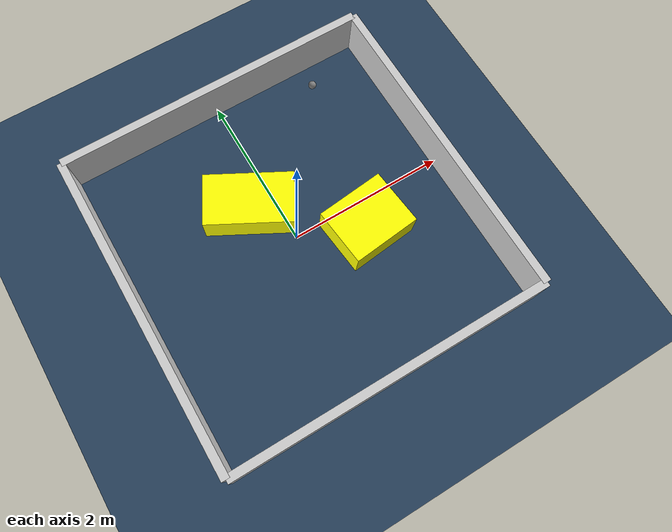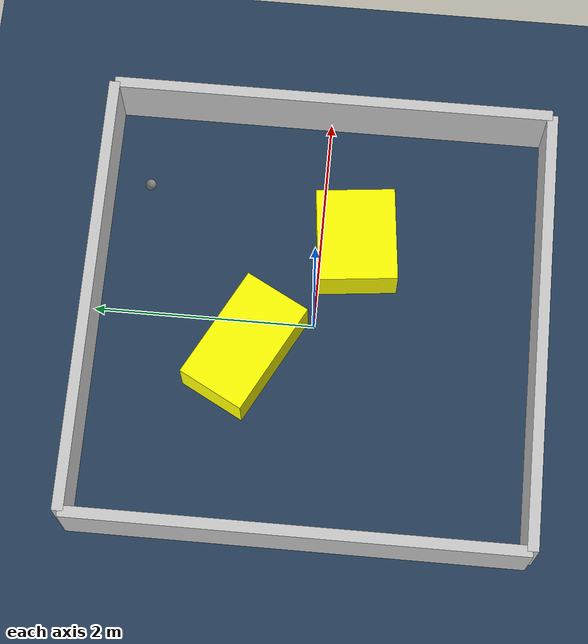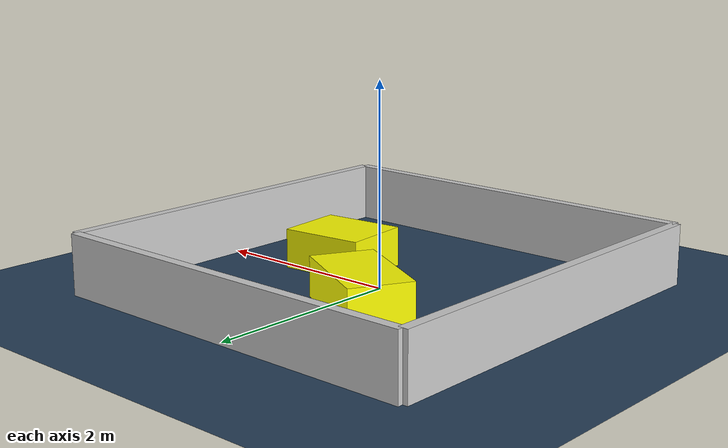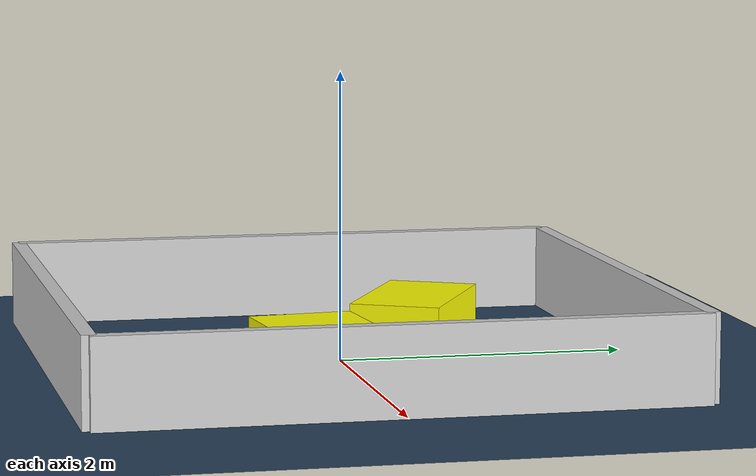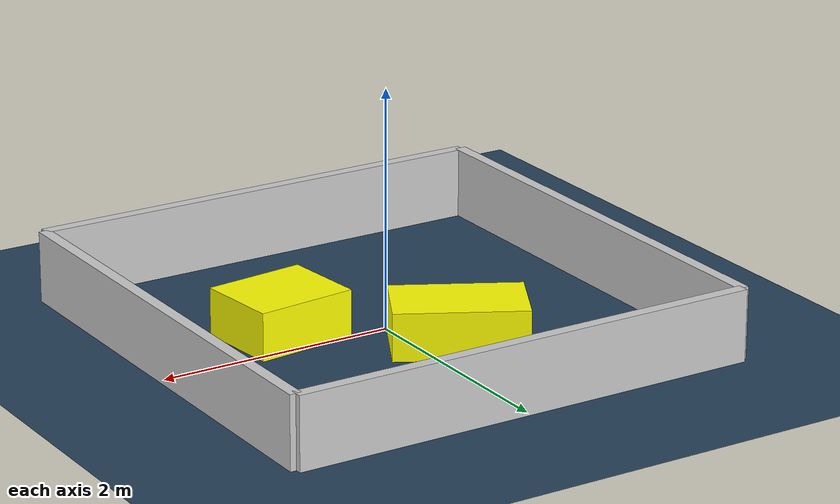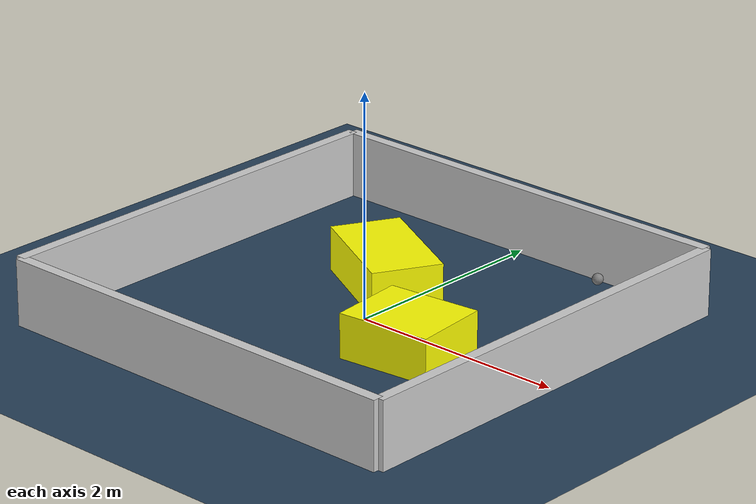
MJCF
<?xml version="1.0" ?>
<mujoco model="generated_environment">
  <option timestep="0.01" integrator="RK4" cone="elliptic"/>
  <default>
    <geom density="1"/>
  </default>
  <asset>
    <texture builtin="gradient" height="3072" rgb1="0.3 0.5 0.7" rgb2="0 0 0" type="skybox" width="512"/>
    <texture builtin="checker" height="300" mark="edge" markrgb="0.8 0.8 0.8" name="groundplane" rgb1="0.2 0.3 0.4" rgb2="0.1 0.2 0.3" type="2d" width="300"/>
    <material name="groundplane" reflectance="0.2" texrepeat="5 5" texture="groundplane" texuniform="true"/>
    <material name="robot" rgba="0.0 1.0 0.0 1"/>
  </asset>
  <worldbody>
    <light dir="0 0 -1" directional="true" pos="0 0 1.5"/>
    <geom condim="4" friction="1.0 0.005 0.001" material="groundplane" name="floor" size="0 0 0.05" type="plane"/>
    <body name="walls">
      <geom name="wall_1" condim="4" pos="-2.0 0.0 0.3" rgba="0.800000011920929 0.800000011920929 0.800000011920929 1.0" size="0.05 2.0 0.3" type="box"/>
      <geom name="wall_2" condim="4" pos="2.0 0.0 0.3" rgba="0.800000011920929 0.800000011920929 0.800000011920929 1.0" size="0.05 2.0 0.3" type="box"/>
      <geom name="wall_3" condim="4" pos="0.0 -2.0 0.3" rgba="0.800000011920929 0.800000011920929 0.800000011920929 1.0" size="2.0 0.05 0.3" type="box"/>
      <geom name="wall_4" condim="4" pos="0.0 2.0 0.3" rgba="0.800000011920929 0.800000011920929 0.800000011920929 1.0" size="2.0 0.05 0.3" type="box"/>
    </body>
    <body name="robot">
      <joint name="joint_x" type="slide" pos="0 0 0" axis="1 0 0"/>
      <joint name="joint_y" type="slide" pos="0 0 0" axis="0 1 0"/>
      <geom name="robot" type="sphere" pos="1.177924401951631 1.6057482947623178 0.2" size="0.05" mass="5." friction="1.0 0.005 0.0001" condim="4"/>
      <site name="sensor_ball"/>
    </body>
    <body name="obstacle_1_movable">
      <geom name="obstacle_1_movable" condim="4" pos="0.7794215707052223 -0.31595813262521744 0.2" euler="0 0 95.9066521835586" friction="1.0 0.005 0.001" rgba="1 1 0 1" size="0.356550407704562 0.4295841825390546 0.2" type="box" mass="0.1"/>
      <joint type="free"/>
    </body>
    <body name="obstacle_2_movable">
      <geom name="obstacle_2_movable" condim="4" pos="-0.3019332977214322 0.5931189996845456 0.2" euler="0 0 331.8852507450743" friction="1.0 0.005 0.001" rgba="1 1 0 1" size="0.5423842625687034 0.316118150525803 0.2" type="box" mass="0.1"/>
      <joint type="free"/>
    </body>
  </worldbody>
  <actuator>
    <motor name="actuator_x" joint="joint_x" gear="1" ctrlrange="-1 1"/>
    <motor name="actuator_y" joint="joint_y" gear="1" ctrlrange="-1 1"/>
  </actuator>
</mujoco>
